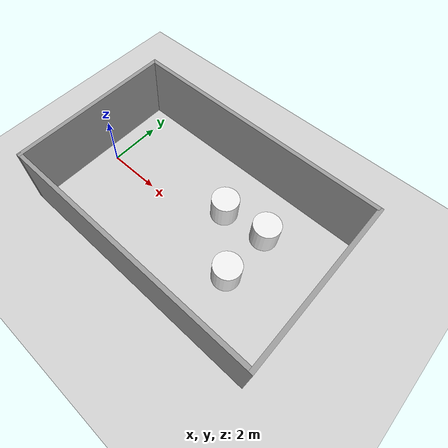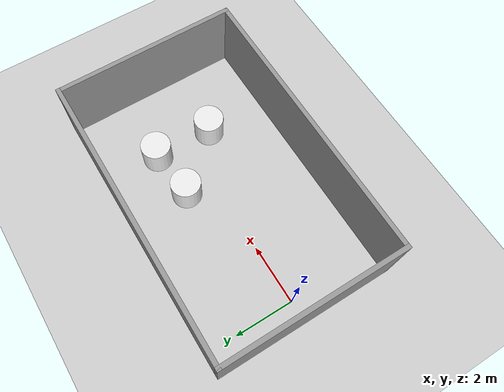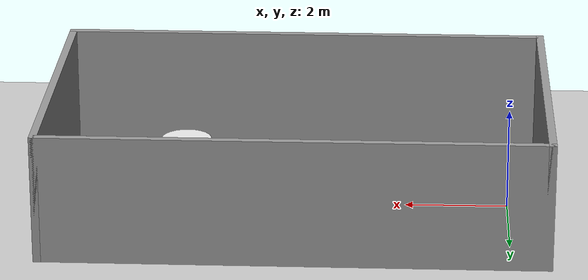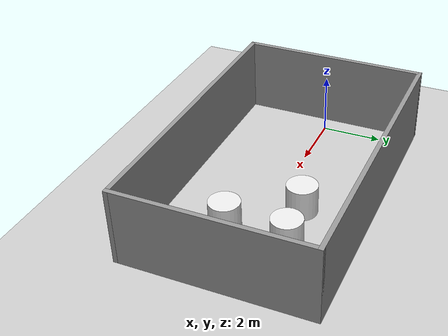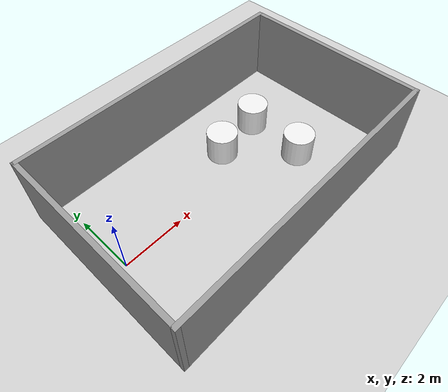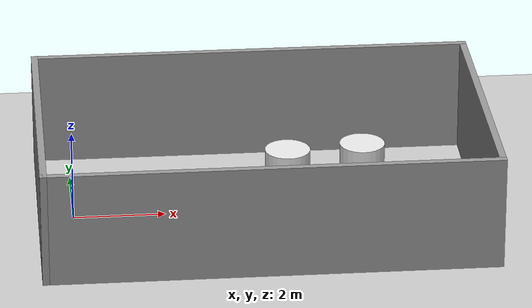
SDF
<sdf version="1.7">
 <world name="default">
  <light name="sun" type="directional">
   <pose>0 0 10 0 -0 0</pose>
   <diffuse>0.8 0.8 0.8 1</diffuse>
   <specular>0.2 0.2 0.2 1</specular>
   <attenuation>
    <range>1000</range>
    <constant>0.9</constant>
    <linear>0.01</linear>
    <quadratic>0.001</quadratic>
   </attenuation>
   <direction>-0.5 0.1 -0.9</direction>
   <spot><inner_angle>0</inner_angle><outer_angle>0</outer_angle><falloff>0</falloff></spot>
  </light>
  <model name="ground_plane">
   <static>1</static>
   <link name="link">
    <collision name="collision">
     <geometry><plane><normal>0 0 1</normal><size>100 100</size></plane></geometry>
     <surface><friction><ode><mu>100</mu><mu2>50</mu2></ode></friction></surface>
    </collision>
    <visual name="visual">
     <cast_shadows>0</cast_shadows>
     <geometry><plane><normal>0 0 1</normal><size>100 100</size></plane></geometry>
     <material>
      <script><uri>file://media/materials/scripts/gazebo.material</uri><name>Gazebo/Grey</name></script>
     </material>
    </visual>
   </link>
  </model>
  <gravity>0 0 -9.8</gravity>
  <magnetic_field>6e-06 2.3e-05 -4.2e-05</magnetic_field>
  <atmosphere type="adiabatic"/>
  <physics type="ode">
   <max_step_size>0.001</max_step_size>
   <real_time_factor>1</real_time_factor>
   <real_time_update_rate>8000</real_time_update_rate>
  </physics>
  <scene><ambient>0.4 0.4 0.4 1</ambient><background>0.7 0.7 0.7 1</background><shadows>1</shadows></scene>
  <spherical_coordinates>
   <surface_model>EARTH_WGS84</surface_model>
   <latitude_deg>0</latitude_deg>
   <longitude_deg>0</longitude_deg>
   <elevation>0</elevation>
   <heading_deg>0</heading_deg>
  </spherical_coordinates>
  <model name="lab_size">
   <pose>4.10787 -0.018704 0 0 -0 0</pose>
   <link name="Wall_1">
    <collision name="Wall_1_Collision">
     <geometry><box><size>9.75 0.15 2.5</size></box></geometry>
     <pose>0 0 1.25 0 -0 0</pose>
    </collision>
    <visual name="Wall_1_Visual">
     <pose>0 0 1.25 0 -0 0</pose>
     <geometry><box><size>9.75 0.15 2.5</size></box></geometry>
     <material>
      <script><uri>file://media/materials/scripts/gazebo.material</uri><name>Gazebo/Grey</name></script>
      <ambient>1 1 1 1</ambient>
     </material>
     <meta><layer>0</layer></meta>
    </visual>
    <pose>-0 3.05 0 0 -0 0</pose>
   </link>
   <link name="Wall_2">
    <collision name="Wall_2_Collision">
     <geometry><box><size>6.25 0.15 2.5</size></box></geometry>
     <pose>0 0 1.25 0 -0 0</pose>
    </collision>
    <visual name="Wall_2_Visual">
     <pose>0 0 1.25 0 -0 0</pose>
     <geometry><box><size>6.25 0.15 2.5</size></box></geometry>
     <material>
      <script><uri>file://media/materials/scripts/gazebo.material</uri><name>Gazebo/Grey</name></script>
      <ambient>1 1 1 1</ambient>
     </material>
     <meta><layer>0</layer></meta>
    </visual>
    <pose>4.8 -0 0 0 -0 -1.5708</pose>
   </link>
   <link name="Wall_3">
    <collision name="Wall_3_Collision">
     <geometry><box><size>9.75 0.15 2.5</size></box></geometry>
     <pose>0 0 1.25 0 -0 0</pose>
    </collision>
    <visual name="Wall_3_Visual">
     <pose>0 0 1.25 0 -0 0</pose>
     <geometry><box><size>9.75 0.15 2.5</size></box></geometry>
     <material>
      <script><uri>file://media/materials/scripts/gazebo.material</uri><name>Gazebo/Grey</name></script>
      <ambient>1 1 1 1</ambient>
     </material>
     <meta><layer>0</layer></meta>
    </visual>
    <pose>-0 -3.05 0 0 -0 3.14159</pose>
   </link>
   <link name="Wall_4">
    <collision name="Wall_4_Collision">
     <geometry><box><size>6.25 0.15 2.5</size></box></geometry>
     <pose>0 0 1.25 0 -0 0</pose>
    </collision>
    <visual name="Wall_4_Visual">
     <pose>0 0 1.25 0 -0 0</pose>
     <geometry><box><size>6.25 0.15 2.5</size></box></geometry>
     <material>
      <script><uri>file://media/materials/scripts/gazebo.material</uri><name>Gazebo/Grey</name></script>
      <ambient>1 1 1 1</ambient>
     </material>
     <meta><layer>0</layer></meta>
    </visual>
    <pose>-4.8 -0 0 0 -0 1.5708</pose>
   </link>
   <static>1</static>
  </model>
  <model name="unit_cylinder_0">
   <pose>6.44231 1.13329 0.499993 -3e-06 -4e-06 -0</pose>
   <link name="link">
    <inertial>
     <mass>1</mass>
     <inertia><ixx>0.145833</ixx><ixy>0</ixy><ixz>0</ixz><iyy>0.145833</iyy><iyz>0</iyz><izz>0.125</izz></inertia>
    </inertial>
    <collision name="collision">
     <geometry><cylinder><radius>0.5</radius><length>1</length></cylinder></geometry>
    </collision>
    <visual name="visual">
     <geometry><cylinder><radius>0.5</radius><length>1</length></cylinder></geometry>
     <material>
      <script><name>Gazebo/White</name><uri>file://media/materials/scripts/gazebo.material</uri></script>
     </material>
    </visual>
   </link>
  </model>
  <model name="unit_cylinder_1">
   <pose>6.40414 -0.867424 0.499993 -3e-06 -3e-06 0</pose>
   <link name="link">
    <inertial>
     <mass>1</mass>
     <inertia><ixx>0.145833</ixx><ixy>0</ixy><ixz>0</ixz><iyy>0.145833</iyy><iyz>0</iyz><izz>0.125</izz></inertia>
    </inertial>
    <collision name="collision">
     <geometry><cylinder><radius>0.5</radius><length>1</length></cylinder></geometry>
    </collision>
    <visual name="visual">
     <geometry><cylinder><radius>0.5</radius><length>1</length></cylinder></geometry>
     <material>
      <script><name>Gazebo/White</name><uri>file://media/materials/scripts/gazebo.material</uri></script>
     </material>
    </visual>
   </link>
  </model>
  <model name="unit_cylinder_2">
   <pose>4.77063 0.955787 0.499997 3e-06 4e-06 -0</pose>
   <link name="link">
    <inertial>
     <mass>1</mass>
     <inertia><ixx>0.145833</ixx><ixy>0</ixy><ixz>0</ixz><iyy>0.145833</iyy><iyz>0</iyz><izz>0.125</izz></inertia>
    </inertial>
    <collision name="collision">
     <geometry><cylinder><radius>0.5</radius><length>1</length></cylinder></geometry>
    </collision>
    <visual name="visual">
     <geometry><cylinder><radius>0.5</radius><length>1</length></cylinder></geometry>
     <material>
      <script><name>Gazebo/White</name><uri>file://media/materials/scripts/gazebo.material</uri></script>
     </material>
    </visual>
   </link>
  </model>
 </world>
</sdf>
